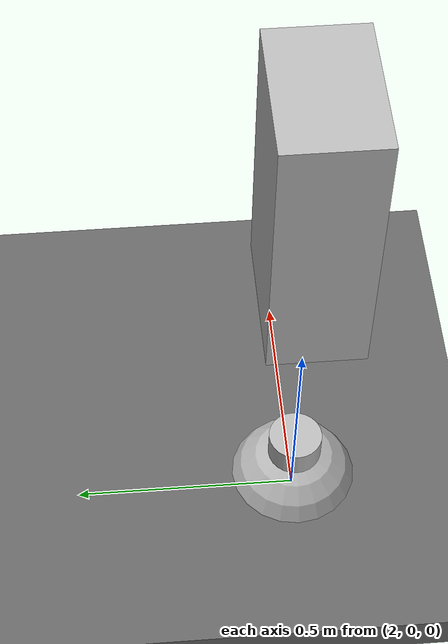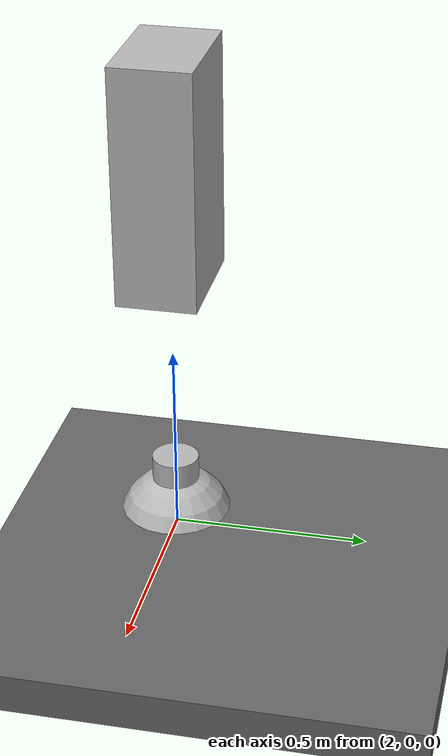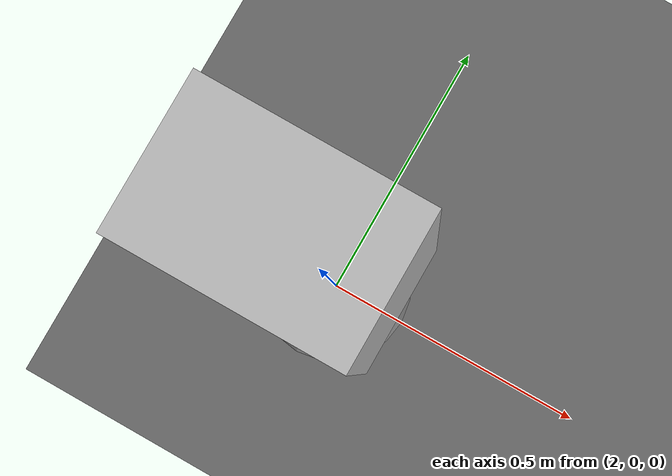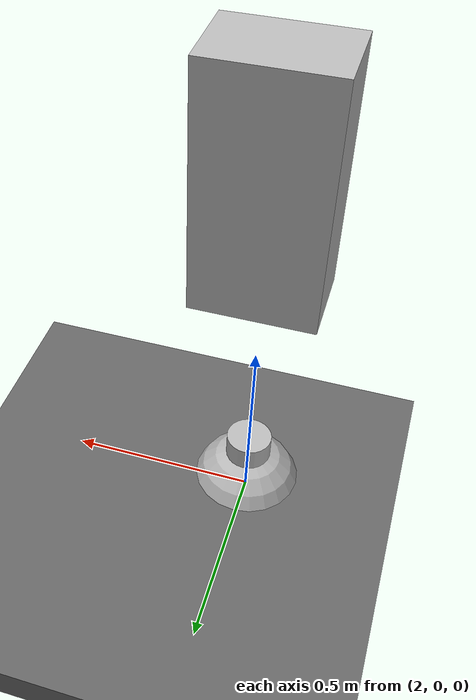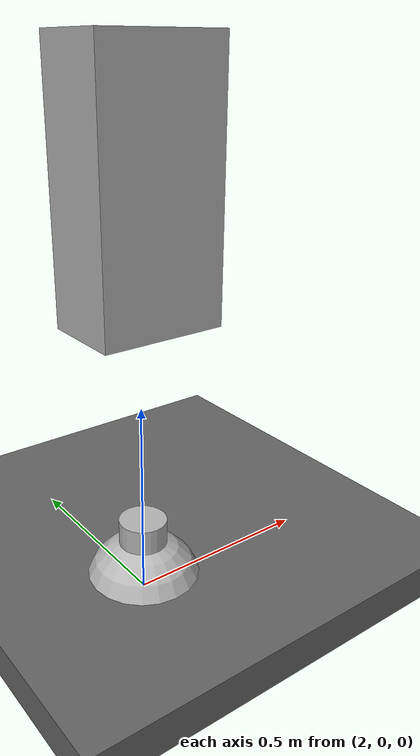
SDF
<sdf version="1.7">
 <world name="icub_world">
  <plugin filename="gz-sim-physics-system" name="gz::sim::systems::Physics"/>
  <plugin filename="gz-sim-scene-broadcaster-system" name="gz::sim::systems::SceneBroadcaster"/>
  <plugin filename="gz-sim-user-commands-system" name="gz::sim::systems::UserCommands"/>
  <gravity>0 0 -9.81</gravity>
  <model name="custom_ground">
   <static>true</static>
   <link name="ground_link">
    <collision name="ground_collision"><geometry><box><size>50 50 0.1</size></box></geometry></collision>
    <visual name="ground_visual">
     <geometry><box><size>50 50 0.1</size></box></geometry>
     <material><ambient>0.3 0.3 0.3 1</ambient><diffuse>0.4 0.4 0.4 1</diffuse></material>
    </visual>
   </link>
  </model>
  <light name="sun_light" type="directional">
   <pose>0 0 10 0 0 0</pose>
   <diffuse>1 1 1 1</diffuse>
   <specular>0.5 0.5 0.5 1</specular>
   <direction>-0.5 0.5 -1</direction>
  </light>
  <model name="simple_humanoid">
   <pose>2 0 0 0 0 0</pose>
   <link name="torso">
    <pose>0 0 1.0 0 0 0</pose>
    <visual name="torso_visual"><geometry><box><size>0.3 0.2 0.6</size></box></geometry></visual>
   </link>
   <link name="head">
    <visual name="head_visual"><geometry><sphere><radius>0.15</radius></sphere></geometry></visual>
   </link>
   <link name="l_upper_arm">
    <visual name="l_upper_arm_visual">
     <geometry><cylinder><radius>0.05</radius><length>0.3</length></cylinder></geometry>
    </visual>
   </link>
   <link name="l_lower_arm">
    <visual name="l_lower_arm_visual">
     <geometry><cylinder><radius>0.04</radius><length>0.25</length></cylinder></geometry>
    </visual>
   </link>
   <link name="r_upper_arm">
    <visual name="r_upper_arm_visual">
     <geometry><cylinder><radius>0.05</radius><length>0.3</length></cylinder></geometry>
    </visual>
   </link>
   <link name="r_lower_arm">
    <visual name="r_lower_arm_visual">
     <geometry><cylinder><radius>0.04</radius><length>0.25</length></cylinder></geometry>
    </visual>
   </link>
   <link name="l_upper_leg">
    <visual name="l_upper_leg_visual">
     <geometry><cylinder><radius>0.06</radius><length>0.4</length></cylinder></geometry>
    </visual>
   </link>
   <link name="l_lower_leg">
    <visual name="l_lower_leg_visual">
     <geometry><cylinder><radius>0.05</radius><length>0.35</length></cylinder></geometry>
    </visual>
   </link>
   <link name="r_upper_leg">
    <visual name="r_upper_leg_visual">
     <geometry><cylinder><radius>0.06</radius><length>0.4</length></cylinder></geometry>
    </visual>
   </link>
   <link name="r_lower_leg">
    <visual name="r_lower_leg_visual">
     <geometry><cylinder><radius>0.05</radius><length>0.35</length></cylinder></geometry>
    </visual>
   </link>
   <joint name="j_head" type="fixed"><parent>torso</parent><child>head</child><pose>0 0 0.45 0 0 0</pose></joint>
   <joint name="j_l_shoulder" type="revolute">
    <parent>torso</parent>
    <child>l_upper_arm</child>
    <pose>0 0.15 1.2 0 0 0</pose>
    <axis><xyz>0 0 1</xyz></axis>
   </joint>
   <joint name="j_l_elbow" type="revolute">
    <parent>l_upper_arm</parent>
    <child>l_lower_arm</child>
    <pose>0 0 0.15 0 0 0</pose>
    <axis><xyz>0 0 1</xyz></axis>
   </joint>
   <joint name="j_r_shoulder" type="revolute">
    <parent>torso</parent>
    <child>r_upper_arm</child>
    <pose>0 -0.15 1.2 0 0 0</pose>
    <axis><xyz>0 0 1</xyz></axis>
   </joint>
   <joint name="j_r_elbow" type="revolute">
    <parent>r_upper_arm</parent>
    <child>r_lower_arm</child>
    <pose>0 0 0.15 0 0 0</pose>
    <axis><xyz>0 0 1</xyz></axis>
   </joint>
   <joint name="j_l_hip" type="revolute">
    <parent>torso</parent>
    <child>l_upper_leg</child>
    <pose>0 0.1 0.7 0 0 0</pose>
    <axis><xyz>0 0 1</xyz></axis>
   </joint>
   <joint name="j_l_knee" type="revolute">
    <parent>l_upper_leg</parent>
    <child>l_lower_leg</child>
    <pose>0 0 -0.2 0 0 0</pose>
    <axis><xyz>0 0 1</xyz></axis>
   </joint>
   <joint name="j_r_hip" type="revolute">
    <parent>torso</parent>
    <child>r_upper_leg</child>
    <pose>0 -0.1 0.7 0 0 0</pose>
    <axis><xyz>0 0 1</xyz></axis>
   </joint>
   <joint name="j_r_knee" type="revolute">
    <parent>r_upper_leg</parent>
    <child>r_lower_leg</child>
    <pose>0 0 -0.2 0 0 0</pose>
    <axis><xyz>0 0 1</xyz></axis>
   </joint>
  </model>
 </world>
</sdf>
